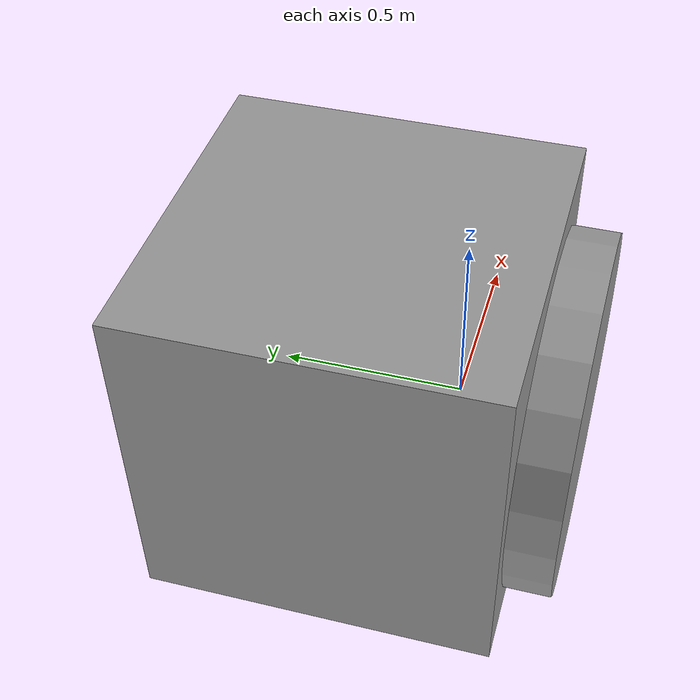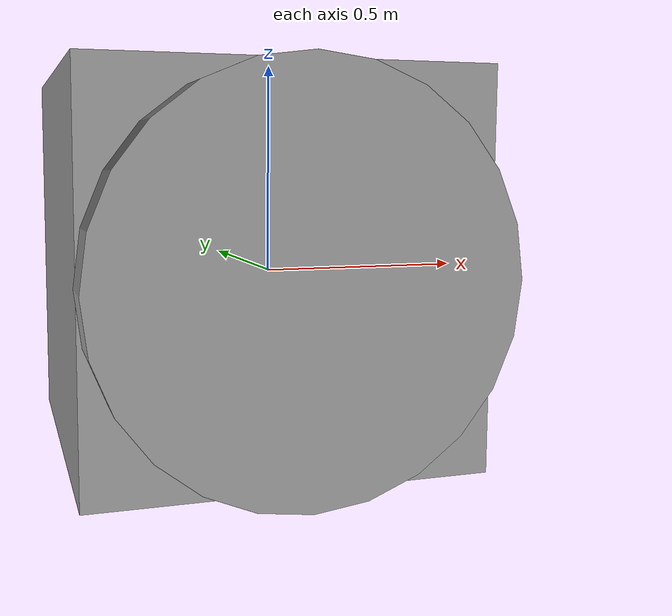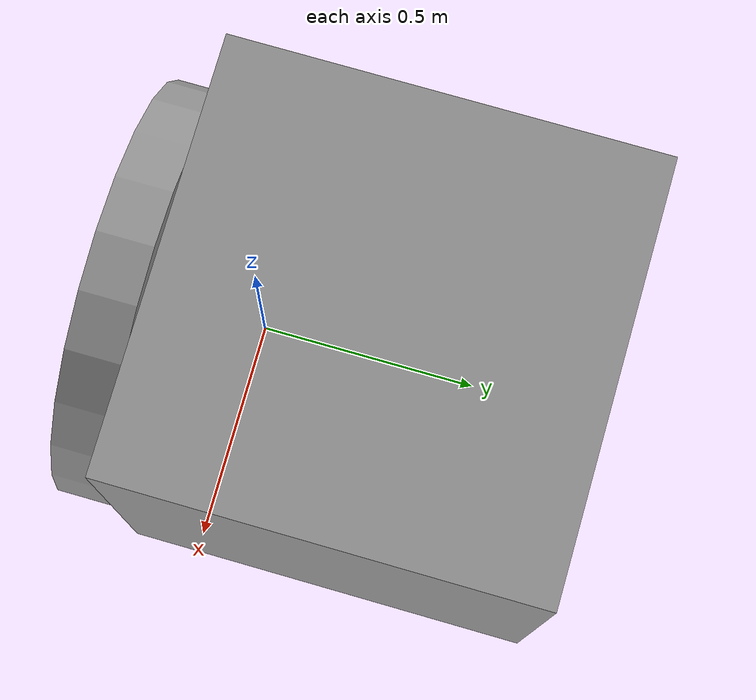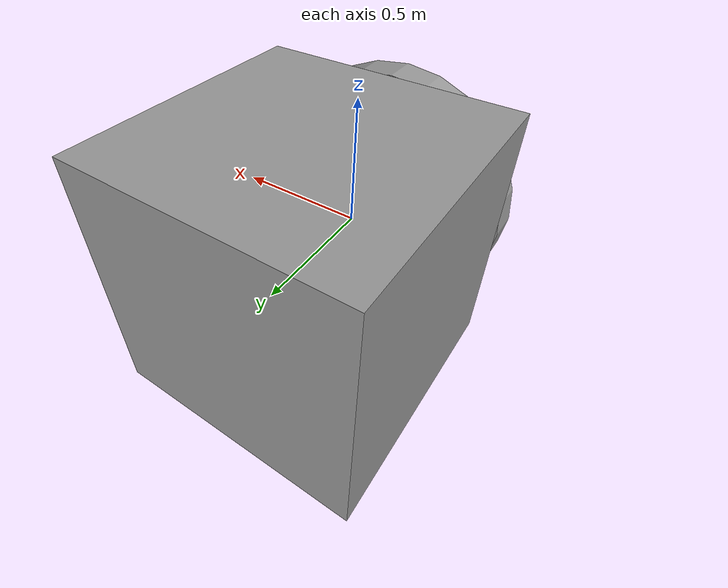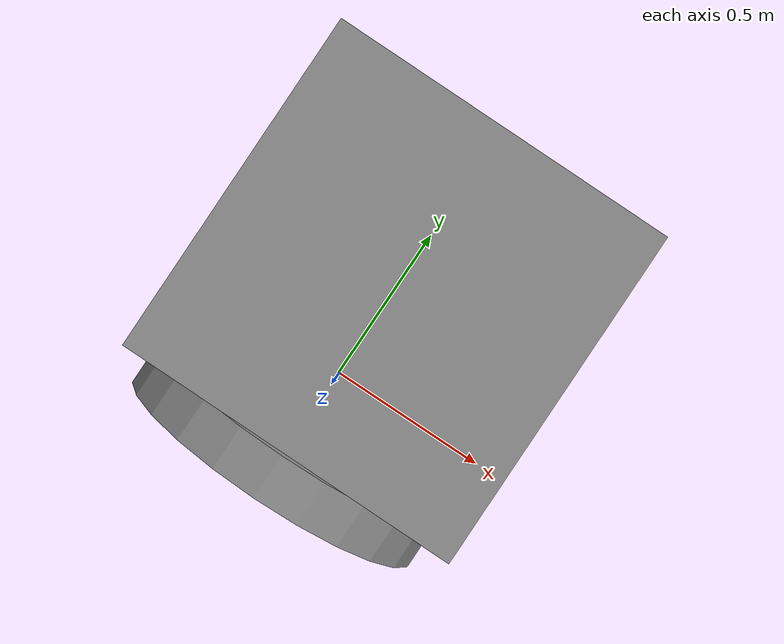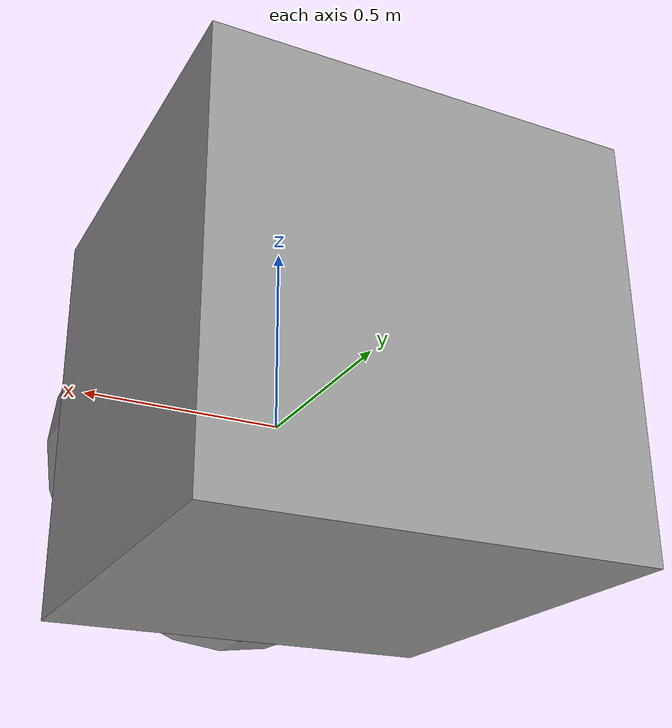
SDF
<?xml version='1.0'?>
<sdf version='1.6'>
  <model name='simple_model'>
    <link name='link_0'>
      <inertial>
        <mass>0.129655</mass>
        <inertia>
          <ixx>0.00828505</ixx>
          <ixy>0</ixy>
          <ixz>0</ixz>
          <iyy>0.00828505</iyy>
          <iyz>0</iyz>
          <izz>0.0162068</izz>
        </inertia>
        <pose frame=''>0 0 0 0 -0 0</pose>
      </inertial>
      <pose frame=''>-0.002696 -0.286281 0 -1.5708 0 0</pose>
      <visual name='visual'>
        <pose frame=''>0 0 0 0 -0 0</pose>
        <geometry>
          <cylinder>
            <radius>0.5</radius>
            <length>0.129655</length>
          </cylinder>
        </geometry>
        <material>
          <lighting>1</lighting>
          <script>
            <uri>file://media/materials/scripts/gazebo.material</uri>
            <name>Gazebo/Grey</name>
          </script>
          <emissive>0 0 0 1</emissive>
        </material>
        <transparency>0</transparency>
        <cast_shadows>1</cast_shadows>
      </visual>
      <collision name='collision'>
        <laser_retro>0</laser_retro>
        <max_contacts>10</max_contacts>
        <pose frame=''>0 0 0 0 -0 0</pose>
        <geometry>
          <cylinder>
            <radius>0.5</radius>
            <length>0.129655</length>
          </cylinder>
        </geometry>
        <surface>
          <friction>
            <ode>
              <mu>1</mu>
              <mu2>1</mu2>
              <fdir1>0 0 0</fdir1>
              <slip1>0</slip1>
              <slip2>0</slip2>
            </ode>
            <torsional>
              <coefficient>1</coefficient>
              <patch_radius>0</patch_radius>
              <surface_radius>0</surface_radius>
              <use_patch_radius>1</use_patch_radius>
              <ode>
                <slip>0</slip>
              </ode>
            </torsional>
          </friction>
          <bounce>
            <restitution_coefficient>0</restitution_coefficient>
            <threshold>1e+06</threshold>
          </bounce>
          <contact>
            <collide_without_contact>0</collide_without_contact>
            <collide_without_contact_bitmask>1</collide_without_contact_bitmask>
            <collide_bitmask>1</collide_bitmask>
            <ode>
              <soft_cfm>0</soft_cfm>
              <soft_erp>0.2</soft_erp>
              <kp>1e+13</kp>
              <kd>1</kd>
              <max_vel>0.01</max_vel>
              <min_depth>0</min_depth>
            </ode>
            <bullet>
              <split_impulse>1</split_impulse>
              <split_impulse_penetration_threshold>-0.01</split_impulse_penetration_threshold>
              <soft_cfm>0</soft_cfm>
              <soft_erp>0.2</soft_erp>
              <kp>1e+13</kp>
              <kd>1</kd>
            </bullet>
          </contact>
        </surface>
      </collision>
    </link>
    <link name='link_1'>
      <inertial>
        <mass>1</mass>
        <inertia>
          <ixx>0.166667</ixx>
          <ixy>0</ixy>
          <ixz>0</ixz>
          <iyy>0.166667</iyy>
          <iyz>0</iyz>
          <izz>0.166667</izz>
        </inertia>
      </inertial>
      <pose frame=''>0.002695 0.286281 0 0 -0 0</pose>
      <visual name='visual'>
        <pose frame=''>0 0 0 0 -0 0</pose>
        <geometry>
          <box>
            <size>1 1 1</size>
          </box>
        </geometry>
        <material>
          <lighting>1</lighting>
          <script>
            <uri>file://media/materials/scripts/gazebo.material</uri>
            <name>Gazebo/Grey</name>
          </script>
          <emissive>0 0 0 1</emissive>
        </material>
        <transparency>0</transparency>
        <cast_shadows>1</cast_shadows>
      </visual>
      <collision name='collision'>
        <laser_retro>0</laser_retro>
        <max_contacts>10</max_contacts>
        <pose frame=''>0 0 0 0 -0 0</pose>
        <geometry>
          <box>
            <size>1 1 1</size>
          </box>
        </geometry>
        <surface>
          <friction>
            <ode>
              <mu>1</mu>
              <mu2>1</mu2>
              <fdir1>0 0 0</fdir1>
              <slip1>0</slip1>
              <slip2>0</slip2>
            </ode>
            <torsional>
              <coefficient>1</coefficient>
              <patch_radius>0</patch_radius>
              <surface_radius>0</surface_radius>
              <use_patch_radius>1</use_patch_radius>
              <ode>
                <slip>0</slip>
              </ode>
            </torsional>
          </friction>
          <bounce>
            <restitution_coefficient>0</restitution_coefficient>
            <threshold>1e+06</threshold>
          </bounce>
          <contact>
            <collide_without_contact>0</collide_without_contact>
            <collide_without_contact_bitmask>1</collide_without_contact_bitmask>
            <collide_bitmask>1</collide_bitmask>
            <ode>
              <soft_cfm>0</soft_cfm>
              <soft_erp>0.2</soft_erp>
              <kp>1e+13</kp>
              <kd>1</kd>
              <max_vel>0.01</max_vel>
              <min_depth>0</min_depth>
            </ode>
            <bullet>
              <split_impulse>1</split_impulse>
              <split_impulse_penetration_threshold>-0.01</split_impulse_penetration_threshold>
              <soft_cfm>0</soft_cfm>
              <soft_erp>0.2</soft_erp>
              <kp>1e+13</kp>
              <kd>1</kd>
            </bullet>
          </contact>
        </surface>
      </collision>
    </link>
    <joint name='link_1_JOINT_0' type='revolute'>
      <parent>link_1</parent>
      <child>link_0</child>
      <pose frame=''>0 0 0 0 -0 0</pose>
      <axis>
        <xyz>0 1 0</xyz>
        <use_parent_model_frame>0</use_parent_model_frame>
        <limit>
          <lower>-1.79769e+308</lower>
          <upper>1.79769e+308</upper>
          <effort>-1</effort>
          <velocity>-1</velocity>
        </limit>
        <dynamics>
          <spring_reference>0</spring_reference>
          <spring_stiffness>0</spring_stiffness>
          <damping>0</damping>
          <friction>0</friction>
        </dynamics>
      </axis>
      <physics>
        <ode>
          <limit>
            <cfm>0</cfm>
            <erp>0.2</erp>
          </limit>
          <suspension>
            <cfm>0</cfm>
            <erp>0.2</erp>
          </suspension>
        </ode>
      </physics>
    </joint>
    <static>0</static>
    <allow_auto_disable>1</allow_auto_disable>
  </model>
</sdf>
